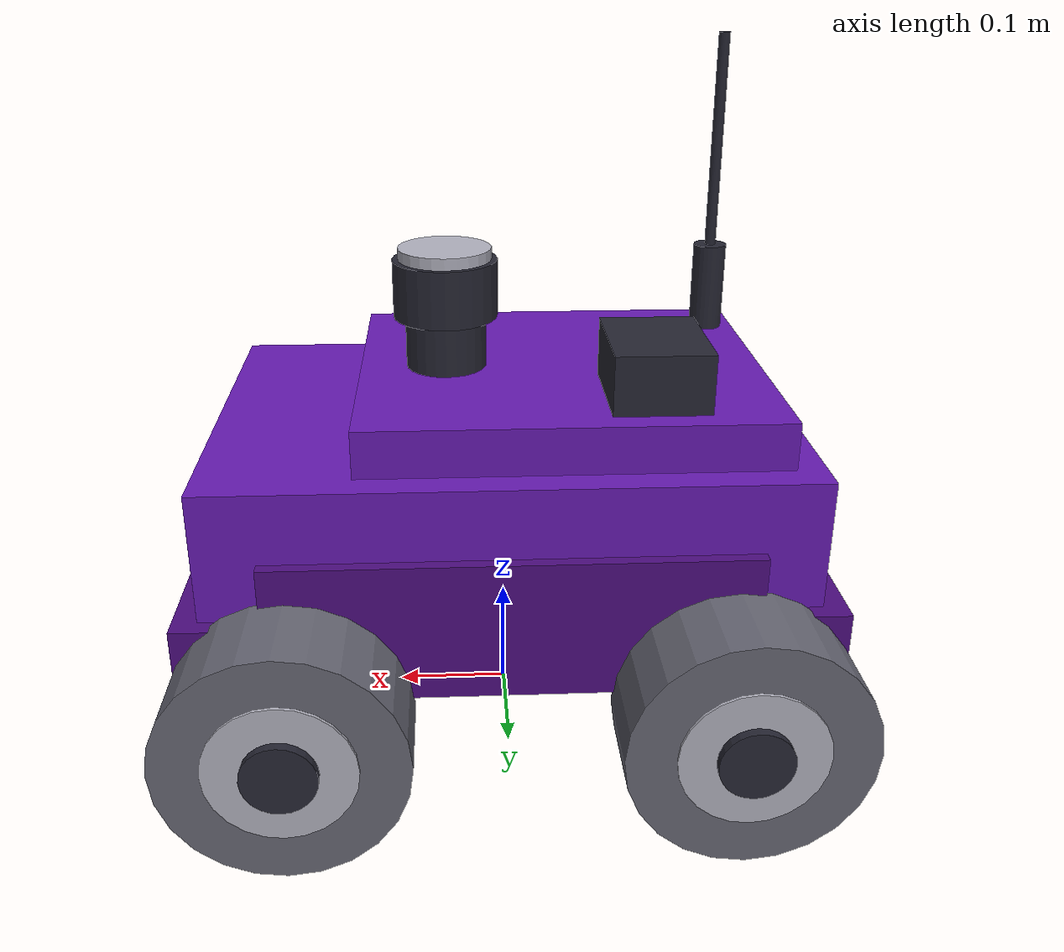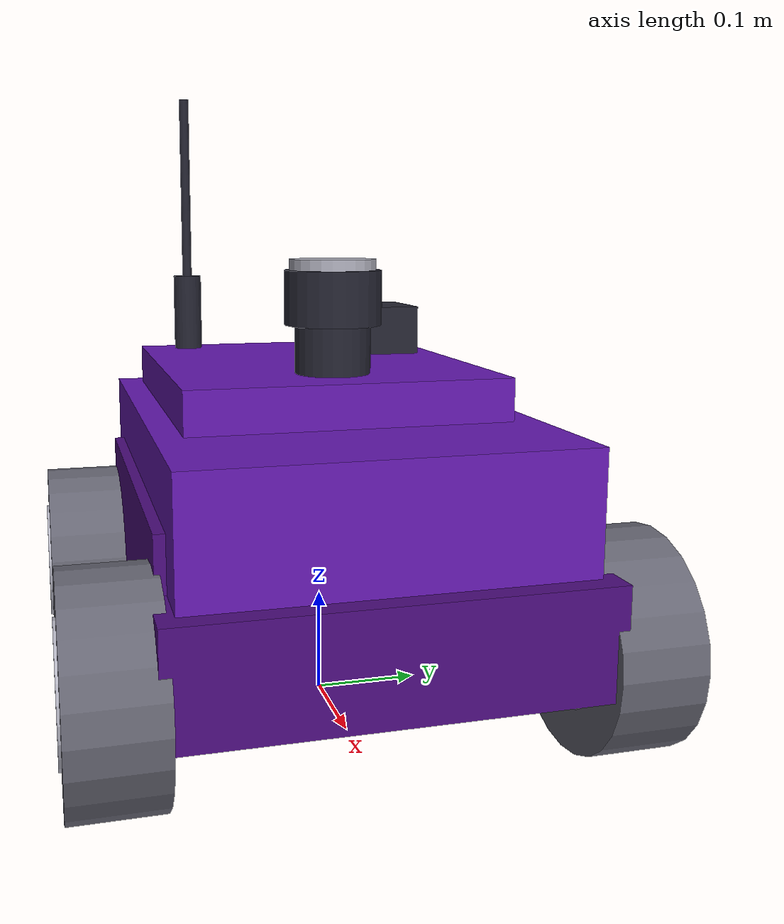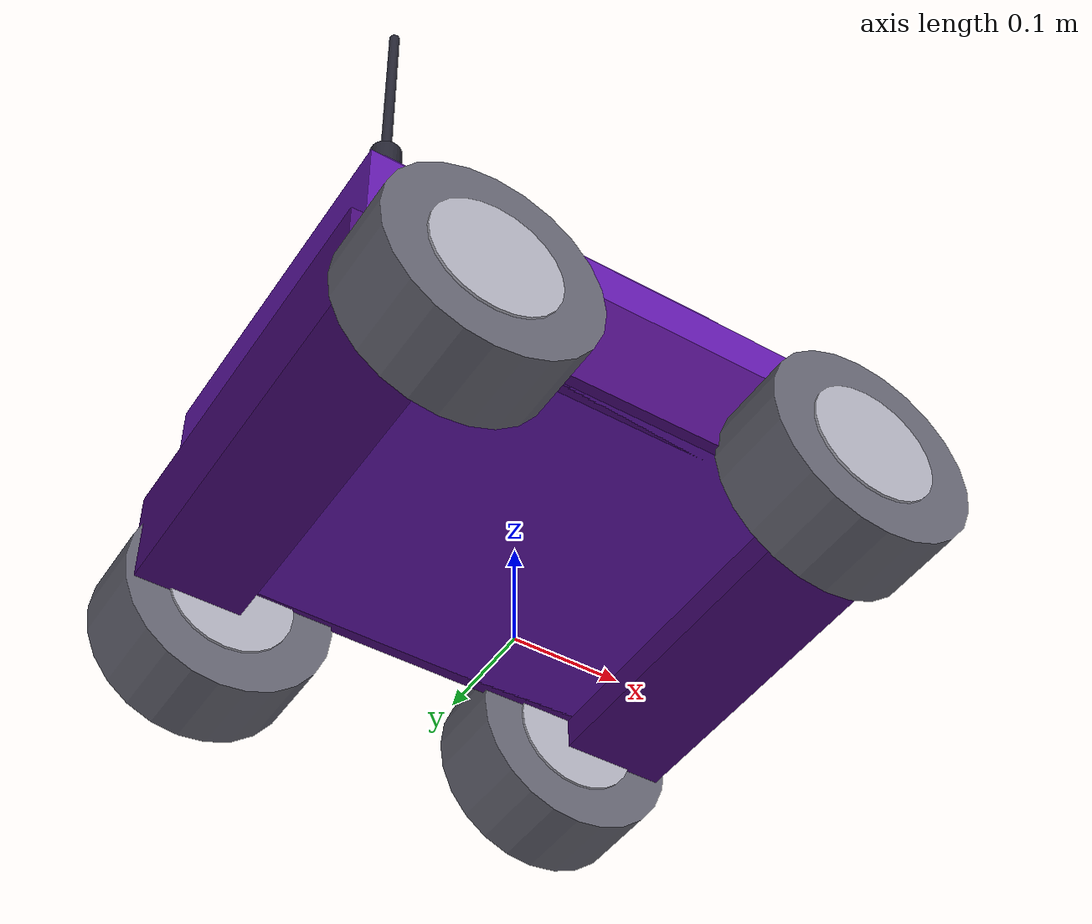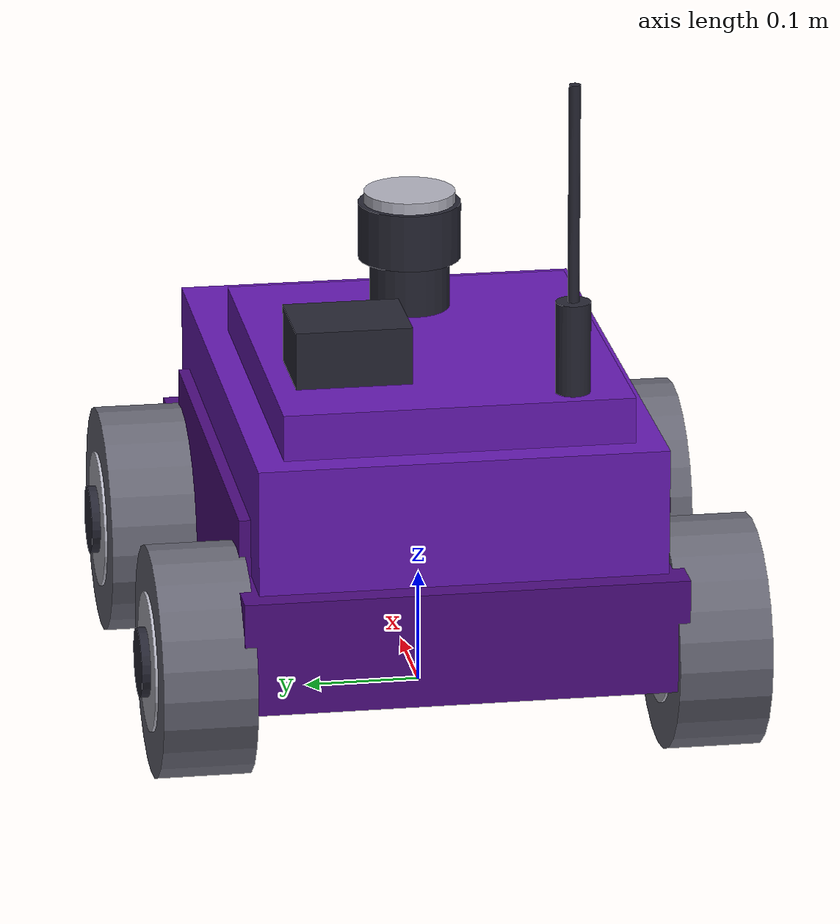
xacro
<robot xmlns:xacro="http://www.ros.org/wiki/xacro" name="car_bot">

    <!-- PURPLE EXPLORER MATERIALS -->

    <!-- Main body - vibrant purple like reference -->
    <material name="body_purple">
        <color rgba="0.4 0.1 0.7 1"/>
    </material>

    <!-- Darker purple for accents -->
    <material name="accent_purple">
        <color rgba="0.3 0.05 0.5 1"/>
    </material>

    <!-- Gray wheels with metallic look -->
    <material name="wheel_gray">
        <color rgba="0.4 0.4 0.45 1"/>
    </material>

    <!-- Light gray for rims -->
    <material name="rim_silver">
        <color rgba="0.7 0.7 0.75 1"/>
    </material>

    <!-- Dark sensor housing -->
    <material name="sensor_dark">
        <color rgba="0.15 0.15 0.2 1"/>
    </material>

    <!-- Base Link (Virtual) -->
    <link name="base_link">
    </link>

    <!-- Chassis Link -->
    <joint name="chassis_joint" type="fixed">
        <parent link="base_link"/>
        <child link="chassis"/>
        <origin xyz="0 0 0.15"/>
    </joint>

    <link name="chassis">
        <!-- Main Box Body - Purple -->
        <visual>
            <origin xyz="0 0 0.05" rpy="0 0 0"/>
            <geometry>
                <box size="0.5 0.35 0.18"/>
            </geometry>
            <material name="body_purple"/>
        </visual>
        <collision>
            <origin xyz="0 0 0.05" rpy="0 0 0"/>
            <geometry>
                <box size="0.5 0.35 0.18"/>
            </geometry>
        </collision>

        <!-- Top Platform / Equipment Deck -->
        <visual>
            <origin xyz="-0.05 0 0.16" rpy="0 0 0"/>
            <geometry>
                <box size="0.35 0.3 0.04"/>
            </geometry>
            <material name="body_purple"/>
        </visual>

        <!-- Front Bumper Section (slightly extended) -->
        <visual>
            <origin xyz="0.22 0 -0.02" rpy="0 0 0"/>
            <geometry>
                <box size="0.1 0.38 0.1"/>
            </geometry>
            <material name="accent_purple"/>
        </visual>

        <!-- Rear Bumper Section -->
        <visual>
            <origin xyz="-0.22 0 -0.02" rpy="0 0 0"/>
            <geometry>
                <box size="0.1 0.38 0.1"/>
            </geometry>
            <material name="accent_purple"/>
        </visual>

        <!-- Side Rails (Left) -->
        <visual>
            <origin xyz="0 0.175 0.02" rpy="0 0 0"/>
            <geometry>
                <box size="0.4 0.02 0.12"/>
            </geometry>
            <material name="accent_purple"/>
        </visual>

        <!-- Side Rails (Right) -->
        <visual>
            <origin xyz="0 -0.175 0.02" rpy="0 0 0"/>
            <geometry>
                <box size="0.4 0.02 0.12"/>
            </geometry>
            <material name="accent_purple"/>
        </visual>

        <!-- Control Box on Top -->
        <visual>
            <origin xyz="-0.12 0.08 0.2" rpy="0 0 0"/>
            <geometry>
                <box size="0.08 0.1 0.06"/>
            </geometry>
            <material name="sensor_dark"/>
        </visual>

        <!-- Antenna Mount -->
        <visual>
            <origin xyz="-0.2 -0.1 0.22" rpy="0 0 0"/>
            <geometry>
                <cylinder radius="0.015" length="0.08"/>
            </geometry>
            <material name="sensor_dark"/>
        </visual>

        <!-- Antenna Stick -->
        <visual>
            <origin xyz="-0.2 -0.1 0.35" rpy="0 0 0"/>
            <geometry>
                <cylinder radius="0.005" length="0.2"/>
            </geometry>
            <material name="sensor_dark"/>
        </visual>

        <inertial>
            <origin xyz="0 0 0" rpy="0 0 0"/>
            <mass value="12.0"/>
            <inertia ixx="0.25" ixy="0.0" ixz="0.0" iyy="0.25" iyz="0.0" izz="0.25"/>
        </inertial>
    </link>

    <gazebo reference="chassis">
        <material>Gazebo/Purple</material>
    </gazebo>

    <!-- Lidar Tower Mount -->
    <joint name="laser_joint" type="fixed">
        <parent link="chassis"/>
        <child link="laser_frame"/>
        <origin xyz="0.05 0 0.25" rpy="0 0 0"/>
    </joint>

    <link name="laser_frame">
        <!-- Pillar Base -->
        <visual>
            <origin xyz="0 0 -0.05" rpy="0 0 0"/>
            <geometry>
                 <cylinder radius="0.035" length="0.08"/>
            </geometry>
            <material name="sensor_dark"/>
        </visual>

        <!-- Sensor Head (Cylinder) -->
        <visual>
            <geometry>
                <cylinder radius="0.045" length="0.05"/>
            </geometry>
            <material name="sensor_dark"/>
        </visual>

        <!-- Top Cap -->
        <visual>
            <origin xyz="0 0 0.03" rpy="0 0 0"/>
            <geometry>
                <cylinder radius="0.04" length="0.01"/>
            </geometry>
            <material name="rim_silver"/>
        </visual>

        <collision>
            <geometry>
                <cylinder radius="0.045" length="0.05"/>
            </geometry>
        </collision>
        <inertial>
            <mass value="0.2"/>
            <inertia ixx="0.001" ixy="0" ixz="0" iyy="0.001" iyz="0" izz="0.001"/>
        </inertial>
    </link>

    <gazebo reference="laser_frame">
        <sensor name="lidar" type="gpu_lidar">
            <pose>0 0 0 0 0 0</pose>
            <always_on>true</always_on>
            <visualize>false</visualize>
            <update_rate>10</update_rate>
            <topic>scan</topic>
            <frame_id>laser_frame</frame_id>
            <ray>
                <scan>
                    <horizontal>
                        <samples>360</samples>
                        <resolution>1</resolution>
                        <min_angle>-3.14</min_angle>
                        <max_angle>3.14</max_angle>
                    </horizontal>
                </scan>
                <range>
                    <min>0.3</min>
                    <max>12</max>
                </range>
            </ray>
        </sensor>
    </gazebo>

    <!-- 4 WHEEL SYSTEM -->
    <!-- Macro for Off-road Wheels like in reference -->
    <xacro:macro name="explorer_wheel" params="prefix x_pos y_pos friction:=1.0">
        <link name="${prefix}_wheel">
            <!-- Outer Tire - Gray rubber look -->
            <visual>
                <origin xyz="0 0 0" rpy="${pi/2} 0 0"/>
                <geometry>
                    <cylinder radius="0.1" length="0.08"/>
                </geometry>
                <material name="wheel_gray"/>
            </visual>

            <!-- Inner Rim - Silver -->
            <visual>
                <origin xyz="0 0 0" rpy="${pi/2} 0 0"/>
                <geometry>
                    <cylinder radius="0.06" length="0.085"/>
                </geometry>
                <material name="rim_silver"/>
            </visual>

            <!-- Hub Cap -->
            <visual>
                <origin xyz="0 0.045 0" rpy="${pi/2} 0 0"/>
                <geometry>
                    <cylinder radius="0.03" length="0.01"/>
                </geometry>
                <material name="sensor_dark"/>
            </visual>

            <collision>
                <origin xyz="0 0 0" rpy="${pi/2} 0 0"/>
                <geometry>
                    <cylinder radius="0.1" length="0.08"/>
                </geometry>
            </collision>
            <inertial>
                <origin xyz="0 0 0" rpy="0 0 0"/>
                <mass value="2.0"/>
                <inertia ixx="0.02" ixy="0.0" ixz="0.0" iyy="0.02" iyz="0.0" izz="0.02"/>
            </inertial>
        </link>

        <joint name="${prefix}_wheel_joint" type="continuous">
            <parent link="base_link"/>
            <child link="${prefix}_wheel"/>
            <origin xyz="${x_pos} ${y_pos} 0.1" rpy="0 0 0"/>
            <axis xyz="0 1 0"/>
        </joint>

        <gazebo reference="${prefix}_wheel">
             <!-- Friction Parameter -->
            <mu1>${friction}</mu1>
            <mu2>${friction}</mu2>
            <material>Gazebo/Grey</material>
        </gazebo>
    </xacro:macro>

    <!-- Front Wheels (Low Friction for turning) -->
    <xacro:explorer_wheel prefix="front_left" x_pos="0.18" y_pos="0.22" friction="0.01"/>
    <xacro:explorer_wheel prefix="front_right" x_pos="0.18" y_pos="-0.22" friction="0.01"/>

    <!-- Rear Wheels (High Friction for driving) -->
    <xacro:explorer_wheel prefix="rear_left"  x_pos="-0.18" y_pos="0.22" friction="1.0"/>
    <xacro:explorer_wheel prefix="rear_right" x_pos="-0.18" y_pos="-0.22" friction="1.0"/>

    <!-- Gazebo Plugin: Diff Drive (Driving Rear Wheels) -->
    <gazebo>
        <plugin filename="gz-sim-diff-drive-system" name="gz::sim::systems::DiffDrive">
            <left_joint>rear_left_wheel_joint</left_joint>
            <right_joint>rear_right_wheel_joint</right_joint>
            <wheel_separation>0.44</wheel_separation>
            <wheel_radius>0.1</wheel_radius>
            <odom_publish_frequency>50</odom_publish_frequency>
            <topic>cmd_vel</topic>
            <odom_topic>odom</odom_topic>
            <frame_id>odom</frame_id>
            <child_frame_id>base_link</child_frame_id>
        </plugin>

        <plugin filename="gz-sim-joint-state-publisher-system" name="gz::sim::systems::JointStatePublisher">
            <topic>joint_states</topic>
            <joint_name>rear_left_wheel_joint</joint_name>
            <joint_name>rear_right_wheel_joint</joint_name>
            <joint_name>front_left_wheel_joint</joint_name>
            <joint_name>front_right_wheel_joint</joint_name>
        </plugin>
    </gazebo>

</robot>
